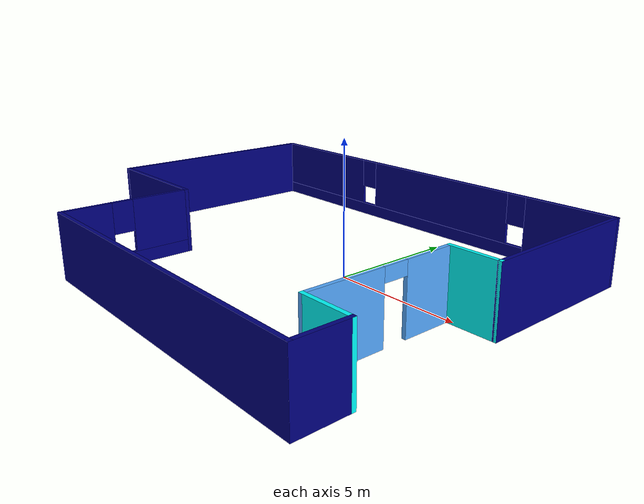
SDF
<?xml version='1.0'?>
<sdf version='1.6'>
  <model name='restaurant'>
    <pose frame=''>-2.20843 -0.617769 0 0 -0 0</pose>
    <link name='Wall_101'>
      <collision name='Wall_101_Collision'>
        <geometry>
          <box>
            <size>13 0.15 2.5</size>
          </box>
        </geometry>
        <pose frame=''>0 0 1.25 0 -0 0</pose>
      </collision>
      <visual name='Wall_101_Visual'>
        <pose frame=''>0 0 1.25 0 -0 0</pose>
        <geometry>
          <box>
            <size>13 0.15 2.5</size>
          </box>
        </geometry>
        <material>
          <script>
            <uri>file://media/materials/scripts/gazebo.material</uri>
            <name>Gazebo/Grey</name>
          </script>
          <ambient>0 0 0.498039 1</ambient>
        </material>
        <meta>
          <layer>0</layer>
        </meta>
      </visual>
      <pose frame=''>2.425 -6.9 0 0 -0 0</pose>
    </link>
    <link name='Wall_103'>
      <collision name='Wall_103_Collision'>
        <geometry>
          <box>
            <size>2 0.15 2.5</size>
          </box>
        </geometry>
        <pose frame=''>0 0 1.25 0 -0 0</pose>
      </collision>
      <visual name='Wall_103_Visual'>
        <pose frame=''>0 0 1.25 0 -0 0</pose>
        <geometry>
          <box>
            <size>2 0.15 2.5</size>
          </box>
        </geometry>
        <material>
          <script>
            <uri>file://media/materials/scripts/gazebo.material</uri>
            <name>Gazebo/Grey</name>
          </script>
          <ambient>0 0 0.498039 1</ambient>
        </material>
        <meta>
          <layer>0</layer>
        </meta>
      </visual>
      <pose frame=''>8.85 -5.975 0 0 -0 1.5708</pose>
    </link>
    <link name='Wall_104'>
      <collision name='Wall_104_Collision'>
        <geometry>
          <box>
            <size>2 0.15 2.5</size>
          </box>
        </geometry>
        <pose frame=''>0 0 1.25 0 -0 0</pose>
      </collision>
      <visual name='Wall_104_Visual'>
        <pose frame=''>0 0 1.25 0 -0 0</pose>
        <geometry>
          <box>
            <size>2 0.15 2.5</size>
          </box>
        </geometry>
        <material>
          <script>
            <uri>file://media/materials/scripts/gazebo.material</uri>
            <name>Gazebo/Grey</name>
          </script>
          <ambient>0 1 1 1</ambient>
        </material>
        <meta>
          <layer>0</layer>
        </meta>
      </visual>
      <pose frame=''>7.925 -5.05 0 0 -0 3.14159</pose>
    </link>
    <link name='Wall_105'>
      <pose frame=''>7 -2.25 0 0 -0 1.5708</pose>
      <visual name='Wall_105_Visual_0'>
        <pose frame=''>-1.4318 0 1.25 0 -0 0</pose>
        <geometry>
          <box>
            <size>2.88641 0.15 2.5</size>
          </box>
        </geometry>
        <material>
          <script>
            <uri>file://media/materials/scripts/gazebo.material</uri>
            <name>Gazebo/Grey</name>
          </script>
          <ambient>0.333333 0.666667 1 1</ambient>
        </material>
        <meta>
          <layer>0</layer>
        </meta>
      </visual>
      <collision name='Wall_105_Collision_0'>
        <geometry>
          <box>
            <size>2.88641 0.15 2.5</size>
          </box>
        </geometry>
        <pose frame=''>-1.4318 0 1.25 0 -0 0</pose>
      </collision>
      <visual name='Wall_105_Visual_1'>
        <pose frame=''>1.8932 0 1.25 0 -0 0</pose>
        <geometry>
          <box>
            <size>1.96359 0.15 2.5</size>
          </box>
        </geometry>
        <material>
          <script>
            <uri>file://media/materials/scripts/gazebo.material</uri>
            <name>Gazebo/Grey</name>
          </script>
          <ambient>0.333333 0.666667 1 1</ambient>
        </material>
        <meta>
          <layer>0</layer>
        </meta>
      </visual>
      <collision name='Wall_105_Collision_1'>
        <geometry>
          <box>
            <size>1.96359 0.15 2.5</size>
          </box>
        </geometry>
        <pose frame=''>1.8932 0 1.25 0 -0 0</pose>
      </collision>
      <visual name='Wall_105_Visual_2'>
        <pose frame=''>0.461409 0 2.25 0 -0 0</pose>
        <geometry>
          <box>
            <size>0.9 0.15 0.5</size>
          </box>
        </geometry>
        <material>
          <script>
            <uri>file://media/materials/scripts/gazebo.material</uri>
            <name>Gazebo/Grey</name>
          </script>
          <ambient>0.333333 0.666667 1 1</ambient>
        </material>
        <meta>
          <layer>0</layer>
        </meta>
      </visual>
      <collision name='Wall_105_Collision_2'>
        <geometry>
          <box>
            <size>0.9 0.15 0.5</size>
          </box>
        </geometry>
        <pose frame=''>0.461409 0 2.25 0 -0 0</pose>
      </collision>
    </link>
    <link name='Wall_106'>
      <collision name='Wall_106_Collision'>
        <geometry>
          <box>
            <size>2 0.15 2.5</size>
          </box>
        </geometry>
        <pose frame=''>0 0 1.25 0 -0 0</pose>
      </collision>
      <visual name='Wall_106_Visual'>
        <pose frame=''>0 0 1.25 0 -0 0</pose>
        <geometry>
          <box>
            <size>2 0.15 2.5</size>
          </box>
        </geometry>
        <material>
          <script>
            <uri>file://media/materials/scripts/gazebo.material</uri>
            <name>Gazebo/Grey</name>
          </script>
          <ambient>0 1 1 1</ambient>
        </material>
        <meta>
          <layer>0</layer>
        </meta>
      </visual>
      <pose frame=''>7.925 0.55 0 0 -0 0</pose>
    </link>
    <link name='Wall_107'>
      <collision name='Wall_107_Collision'>
        <geometry>
          <box>
            <size>6.5 0.15 2.5</size>
          </box>
        </geometry>
        <pose frame=''>0 0 1.25 0 -0 0</pose>
      </collision>
      <visual name='Wall_107_Visual'>
        <pose frame=''>0 0 1.25 0 -0 0</pose>
        <geometry>
          <box>
            <size>6.5 0.15 2.5</size>
          </box>
        </geometry>
        <material>
          <script>
            <uri>file://media/materials/scripts/gazebo.material</uri>
            <name>Gazebo/Grey</name>
          </script>
          <ambient>0 0 0.498039 1</ambient>
        </material>
        <meta>
          <layer>0</layer>
        </meta>
      </visual>
      <pose frame=''>8.85 3.725 0 0 -0 1.5708</pose>
    </link>
    <link name='Wall_109'>
      <pose frame=''>0 6.9 0 0 -0 3.14159</pose>
      <visual name='Wall_109_Visual_0'>
        <pose frame=''>-7.12995 0 1.25 0 -0 0</pose>
        <geometry>
          <box>
            <size>3.59009 0.15 2.5</size>
          </box>
        </geometry>
        <material>
          <script>
            <uri>file://media/materials/scripts/gazebo.material</uri>
            <name>Gazebo/Grey</name>
          </script>
          <ambient>0 0 0.498039 1</ambient>
        </material>
        <meta>
          <layer>0</layer>
        </meta>
      </visual>
      <collision name='Wall_109_Collision_0'>
        <geometry>
          <box>
            <size>3.59009 0.15 2.5</size>
          </box>
        </geometry>
        <pose frame=''>-7.12995 0 1.25 0 -0 0</pose>
      </collision>
      <visual name='Wall_109_Visual_1'>
        <pose frame=''>1.79505 0 0.25 0 -0 0</pose>
        <geometry>
          <box>
            <size>14.2599 0.15 0.5</size>
          </box>
        </geometry>
        <material>
          <script>
            <uri>file://media/materials/scripts/gazebo.material</uri>
            <name>Gazebo/Grey</name>
          </script>
          <ambient>0 0 0.498039 1</ambient>
        </material>
        <meta>
          <layer>0</layer>
        </meta>
      </visual>
      <collision name='Wall_109_Collision_1'>
        <geometry>
          <box>
            <size>14.2599 0.15 0.5</size>
          </box>
        </geometry>
        <pose frame=''>1.79505 0 0.25 0 -0 0</pose>
      </collision>
      <visual name='Wall_109_Visual_2'>
        <pose frame=''>-0.968805 0 1.5 0 -0 0</pose>
        <geometry>
          <box>
            <size>7.13221 0.15 2</size>
          </box>
        </geometry>
        <material>
          <script>
            <uri>file://media/materials/scripts/gazebo.material</uri>
            <name>Gazebo/Grey</name>
          </script>
          <ambient>0 0 0.498039 1</ambient>
        </material>
        <meta>
          <layer>0</layer>
        </meta>
      </visual>
      <collision name='Wall_109_Collision_2'>
        <geometry>
          <box>
            <size>7.13221 0.15 2</size>
          </box>
        </geometry>
        <pose frame=''>-0.968805 0 1.5 0 -0 0</pose>
      </collision>
      <visual name='Wall_109_Visual_3'>
        <pose frame=''>6.16115 0 1.5 0 -0 0</pose>
        <geometry>
          <box>
            <size>5.5277 0.15 2</size>
          </box>
        </geometry>
        <material>
          <script>
            <uri>file://media/materials/scripts/gazebo.material</uri>
            <name>Gazebo/Grey</name>
          </script>
          <ambient>0 0 0.498039 1</ambient>
        </material>
        <meta>
          <layer>0</layer>
        </meta>
      </visual>
      <collision name='Wall_109_Collision_3'>
        <geometry>
          <box>
            <size>5.5277 0.15 2</size>
          </box>
        </geometry>
        <pose frame=''>6.16115 0 1.5 0 -0 0</pose>
      </collision>
      <visual name='Wall_109_Visual_4'>
        <pose frame=''>-4.93491 0 1.9 0 -0 0</pose>
        <geometry>
          <box>
            <size>0.8 0.15 1.2</size>
          </box>
        </geometry>
        <material>
          <script>
            <uri>file://media/materials/scripts/gazebo.material</uri>
            <name>Gazebo/Grey</name>
          </script>
          <ambient>0 0 0.498039 1</ambient>
        </material>
        <meta>
          <layer>0</layer>
        </meta>
      </visual>
      <collision name='Wall_109_Collision_4'>
        <geometry>
          <box>
            <size>0.8 0.15 1.2</size>
          </box>
        </geometry>
        <pose frame=''>-4.93491 0 1.9 0 -0 0</pose>
      </collision>
      <visual name='Wall_109_Visual_5'>
        <pose frame=''>2.9973 0 1.9 0 -0 0</pose>
        <geometry>
          <box>
            <size>0.8 0.15 1.2</size>
          </box>
        </geometry>
        <material>
          <script>
            <uri>file://media/materials/scripts/gazebo.material</uri>
            <name>Gazebo/Grey</name>
          </script>
          <ambient>0 0 0.498039 1</ambient>
        </material>
        <meta>
          <layer>0</layer>
        </meta>
      </visual>
      <collision name='Wall_109_Collision_5'>
        <geometry>
          <box>
            <size>0.8 0.15 1.2</size>
          </box>
        </geometry>
        <pose frame=''>2.9973 0 1.9 0 -0 0</pose>
      </collision>
    </link>
    <link name='Wall_93'>
      <pose frame=''>-4 -4.475 0 0 -0 1.5708</pose>
      <visual name='Wall_93_Visual_0'>
        <pose frame=''>-1.54548 0 1.25 0 -0 0</pose>
        <geometry>
          <box>
            <size>1.90904 0.15 2.5</size>
          </box>
        </geometry>
        <material>
          <script>
            <uri>file://media/materials/scripts/gazebo.material</uri>
            <name>Gazebo/Grey</name>
          </script>
          <ambient>0 0 0.498039 1</ambient>
        </material>
        <meta>
          <layer>0</layer>
        </meta>
      </visual>
      <collision name='Wall_93_Collision_0'>
        <geometry>
          <box>
            <size>1.90904 0.15 2.5</size>
          </box>
        </geometry>
        <pose frame=''>-1.54548 0 1.25 0 -0 0</pose>
      </collision>
      <visual name='Wall_93_Visual_1'>
        <pose frame=''>0.954519 0 0.25 0 -0 0</pose>
        <geometry>
          <box>
            <size>3.09096 0.15 0.5</size>
          </box>
        </geometry>
        <material>
          <script>
            <uri>file://media/materials/scripts/gazebo.material</uri>
            <name>Gazebo/Grey</name>
          </script>
          <ambient>0 0 0.498039 1</ambient>
        </material>
        <meta>
          <layer>0</layer>
        </meta>
      </visual>
      <collision name='Wall_93_Collision_1'>
        <geometry>
          <box>
            <size>3.09096 0.15 0.5</size>
          </box>
        </geometry>
        <pose frame=''>0.954519 0 0.25 0 -0 0</pose>
      </collision>
      <visual name='Wall_93_Visual_2'>
        <pose frame=''>1.35452 0 1.5 0 -0 0</pose>
        <geometry>
          <box>
            <size>2.29096 0.15 2</size>
          </box>
        </geometry>
        <material>
          <script>
            <uri>file://media/materials/scripts/gazebo.material</uri>
            <name>Gazebo/Grey</name>
          </script>
          <ambient>0 0 0.498039 1</ambient>
        </material>
        <meta>
          <layer>0</layer>
        </meta>
      </visual>
      <collision name='Wall_93_Collision_2'>
        <geometry>
          <box>
            <size>2.29096 0.15 2</size>
          </box>
        </geometry>
        <pose frame=''>1.35452 0 1.5 0 -0 0</pose>
      </collision>
      <visual name='Wall_93_Visual_3'>
        <pose frame=''>-0.190961 0 1.9 0 -0 0</pose>
        <geometry>
          <box>
            <size>0.8 0.15 1.2</size>
          </box>
        </geometry>
        <material>
          <script>
            <uri>file://media/materials/scripts/gazebo.material</uri>
            <name>Gazebo/Grey</name>
          </script>
          <ambient>0 0 0.498039 1</ambient>
        </material>
        <meta>
          <layer>0</layer>
        </meta>
      </visual>
      <collision name='Wall_93_Collision_3'>
        <geometry>
          <box>
            <size>0.8 0.15 1.2</size>
          </box>
        </geometry>
        <pose frame=''>-0.190961 0 1.9 0 -0 0</pose>
      </collision>
    </link>
    <link name='Wall_95'>
      <collision name='Wall_95_Collision'>
        <geometry>
          <box>
            <size>5 0.15 2.5</size>
          </box>
        </geometry>
        <pose frame=''>0 0 1.25 0 -0 0</pose>
      </collision>
      <visual name='Wall_95_Visual'>
        <pose frame=''>0 0 1.25 0 -0 0</pose>
        <geometry>
          <box>
            <size>5 0.15 2.5</size>
          </box>
        </geometry>
        <material>
          <script>
            <uri>file://media/materials/scripts/gazebo.material</uri>
            <name>Gazebo/Grey</name>
          </script>
          <ambient>0 0 0.498039 1</ambient>
        </material>
        <meta>
          <layer>0</layer>
        </meta>
      </visual>
      <pose frame=''>-6.425 -2.05 0 0 -0 3.14159</pose>
    </link>
    <link name='Wall_96'>
      <collision name='Wall_96_Collision'>
        <geometry>
          <box>
            <size>9 0.15 2.5</size>
          </box>
        </geometry>
        <pose frame=''>0 0 1.25 0 -0 0</pose>
      </collision>
      <visual name='Wall_96_Visual'>
        <pose frame=''>0 0 1.25 0 -0 0</pose>
        <geometry>
          <box>
            <size>9 0.15 2.5</size>
          </box>
        </geometry>
        <material>
          <script>
            <uri>file://media/materials/scripts/gazebo.material</uri>
            <name>Gazebo/Grey</name>
          </script>
          <ambient>0 0 0.498039 1</ambient>
        </material>
        <meta>
          <layer>0</layer>
        </meta>
      </visual>
      <pose frame=''>-8.85 2.375 0 0 -0 1.5708</pose>
    </link>
    <static>1</static>
  </model>
</sdf>
